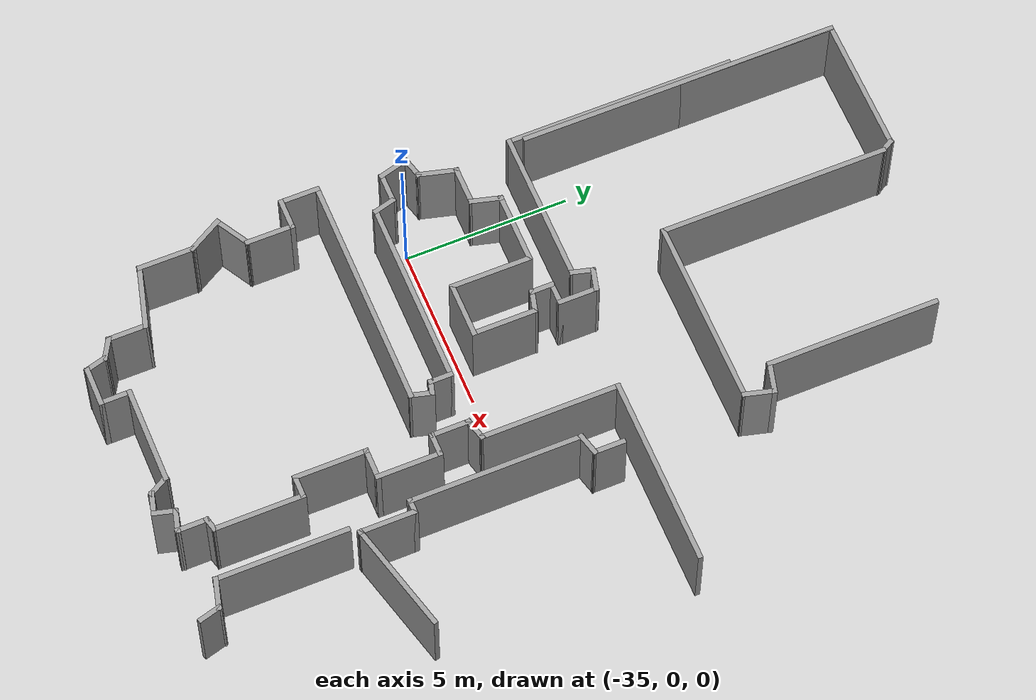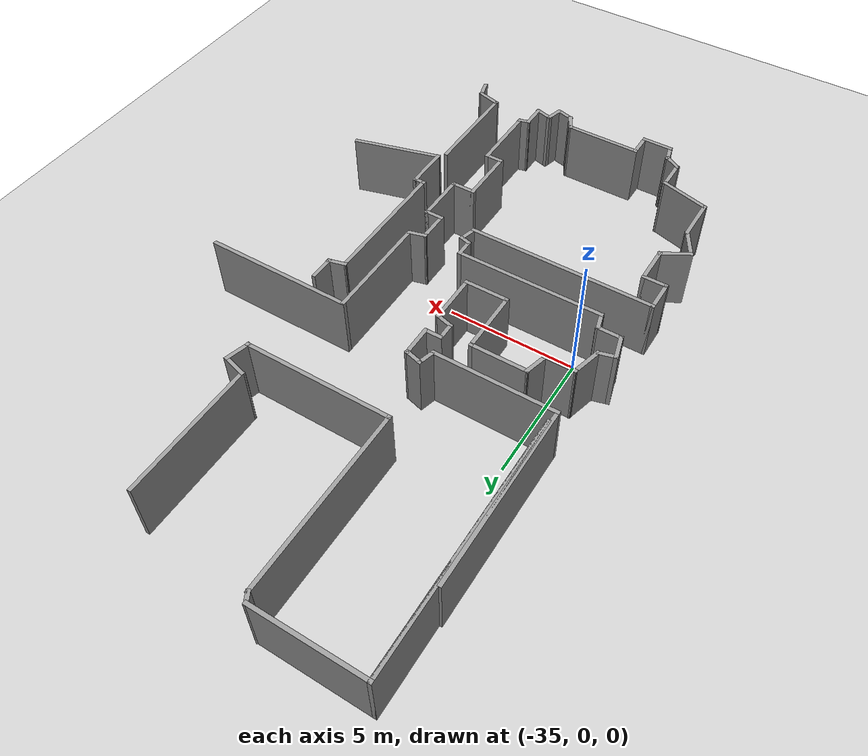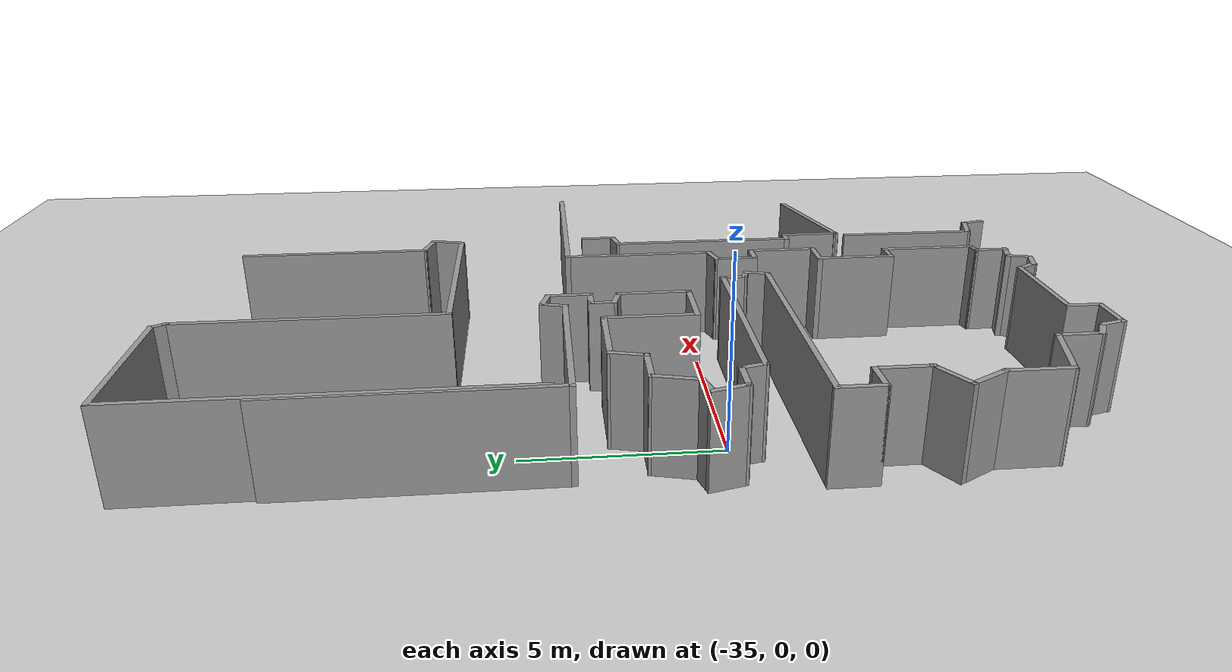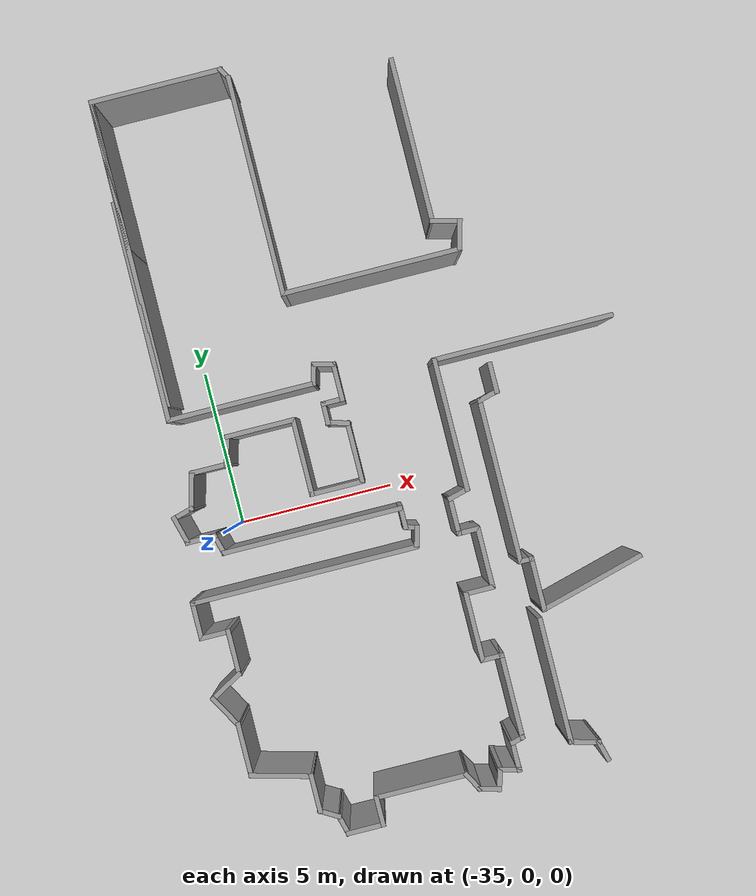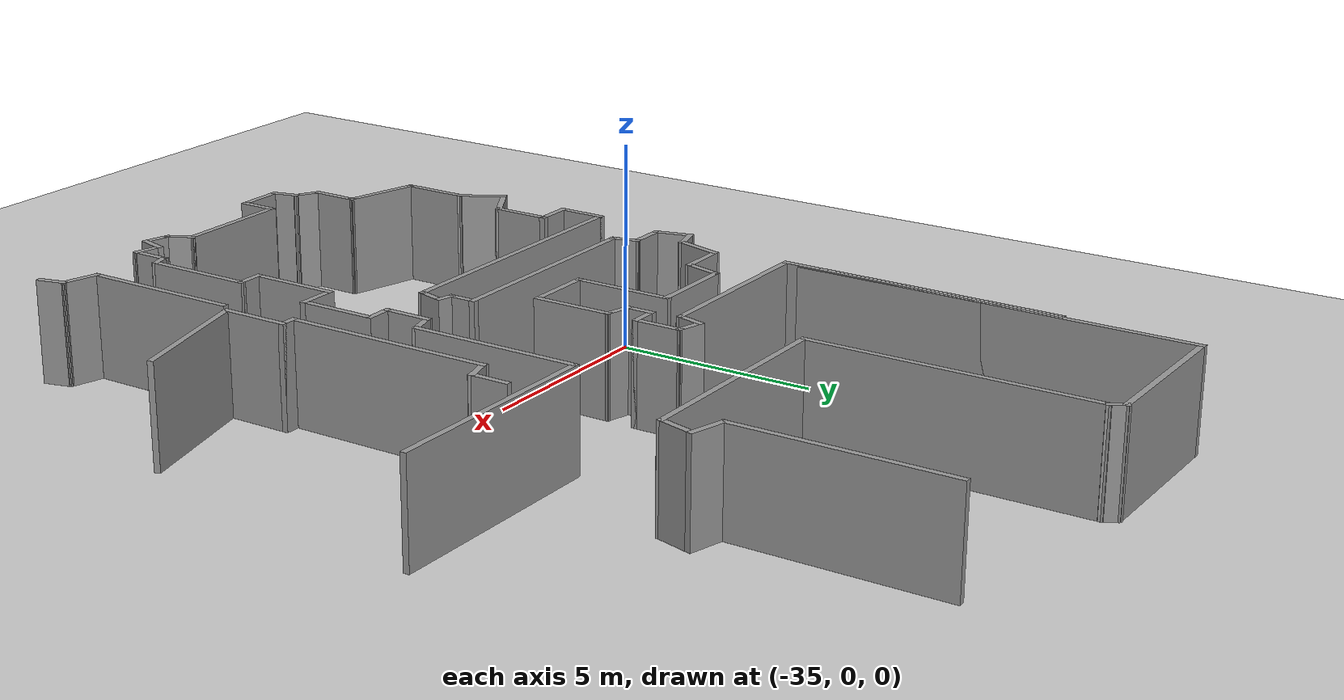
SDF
<sdf version="1.7">
 <world name="default">
  <model name="ground_plane">
   <static>1</static>
   <link name="link">
    <collision name="collision">
     <geometry><plane><normal>0 0 1</normal><size>100 100</size></plane></geometry>
     <surface>
      <contact><collide_bitmask>65535</collide_bitmask></contact>
      <friction><ode><mu>100</mu><mu2>50</mu2></ode></friction>
     </surface>
    </collision>
    <visual name="visual">
     <cast_shadows>0</cast_shadows>
     <geometry><plane><normal>0 0 1</normal><size>100 100</size></plane></geometry>
     <material>
      <script><uri>file://media/materials/scripts/gazebo.material</uri><name>Gazebo/Grey</name></script>
     </material>
    </visual>
   </link>
  </model>
  <model name="Hospital">
   <pose>0.328682 -0.388502 0 0 -0 0</pose>
   <link name="Wall_10">
    <collision name="Wall_10_Collision">
     <geometry><box><size>9.75 0.15 2.5</size></box></geometry>
     <pose>0 0 1.25 0 -0 0</pose>
    </collision>
    <visual name="Wall_10_Visual">
     <pose>0 0 1.25 0 -0 0</pose>
     <geometry><box><size>9.75 0.15 2.5</size></box></geometry>
     <material>
      <script><uri>file://media/materials/scripts/gazebo.material</uri><name>Gazebo/Grey</name></script>
      <ambient>1 1 1 1</ambient>
     </material>
     <meta><layer>0</layer></meta>
    </visual>
    <pose>-36.3837 9.34312 0 0 -0 1.5708</pose>
   </link>
   <link name="Wall_11">
    <collision name="Wall_11_Collision">
     <geometry><box><size>9.75 0.15 2.5</size></box></geometry>
     <pose>0 0 1.25 0 -0 0</pose>
    </collision>
    <visual name="Wall_11_Visual">
     <pose>0 0 1.25 0 -0 0</pose>
     <geometry><box><size>9.75 0.15 2.5</size></box></geometry>
     <material>
      <script><uri>file://media/materials/scripts/gazebo.material</uri><name>Gazebo/Grey</name></script>
      <ambient>1 1 1 1</ambient>
     </material>
     <meta><layer>0</layer></meta>
    </visual>
    <pose>-36.3837 9.34312 0 0 -0 -1.5708</pose>
   </link>
   <link name="Wall_13">
    <collision name="Wall_13_Collision">
     <geometry><box><size>4.25 0.15 2.5</size></box></geometry>
     <pose>0 0 1.25 0 -0 0</pose>
    </collision>
    <visual name="Wall_13_Visual">
     <pose>0 0 1.25 0 -0 0</pose>
     <geometry><box><size>4.25 0.15 2.5</size></box></geometry>
     <material>
      <script><uri>file://media/materials/scripts/gazebo.material</uri><name>Gazebo/Grey</name></script>
      <ambient>1 1 1 1</ambient>
     </material>
     <meta><layer>0</layer></meta>
    </visual>
    <pose>-34.3337 14.1431 0 0 -0 0</pose>
   </link>
   <link name="Wall_14">
    <collision name="Wall_14_Collision">
     <geometry><box><size>0.5 0.15 2.5</size></box></geometry>
     <pose>0 0 1.25 0 -0 0</pose>
    </collision>
    <visual name="Wall_14_Visual">
     <pose>0 0 1.25 0 -0 0</pose>
     <geometry><box><size>0.5 0.15 2.5</size></box></geometry>
     <material>
      <script><uri>file://media/materials/scripts/gazebo.material</uri><name>Gazebo/Grey</name></script>
      <ambient>1 1 1 1</ambient>
     </material>
     <meta><layer>0</layer></meta>
    </visual>
    <pose>-32.1962 13.9916 0 0 -0 -1.0472</pose>
   </link>
   <link name="Wall_15">
    <collision name="Wall_15_Collision">
     <geometry><box><size>7 0.15 2.5</size></box></geometry>
     <pose>0 0 1.25 0 -0 0</pose>
    </collision>
    <visual name="Wall_15_Visual">
     <pose>0 0 1.25 0 -0 0</pose>
     <geometry><box><size>7 0.15 2.5</size></box></geometry>
     <material>
      <script><uri>file://media/materials/scripts/gazebo.material</uri><name>Gazebo/Grey</name></script>
      <ambient>1 1 1 1</ambient>
     </material>
     <meta><layer>0</layer></meta>
    </visual>
    <pose>-32.1087 10.415 0 0 -0 -1.5708</pose>
   </link>
   <link name="Wall_16">
    <collision name="Wall_16_Collision">
     <geometry><box><size>5.75 0.15 2.5</size></box></geometry>
     <pose>0 0 1.25 0 -0 0</pose>
    </collision>
    <visual name="Wall_16_Visual">
     <pose>0 0 1.25 0 -0 0</pose>
     <geometry><box><size>5.75 0.15 2.5</size></box></geometry>
     <material>
      <script><uri>file://media/materials/scripts/gazebo.material</uri><name>Gazebo/Grey</name></script>
      <ambient>1 1 1 1</ambient>
     </material>
     <meta><layer>0</layer></meta>
    </visual>
    <pose>-29.3087 6.99001 0 0 -0 0</pose>
   </link>
   <link name="Wall_17">
    <collision name="Wall_17_Collision">
     <geometry><box><size>1 0.15 2.5</size></box></geometry>
     <pose>0 0 1.25 0 -0 0</pose>
    </collision>
    <visual name="Wall_17_Visual">
     <pose>0 0 1.25 0 -0 0</pose>
     <geometry><box><size>1 0.15 2.5</size></box></geometry>
     <material>
      <script><uri>file://media/materials/scripts/gazebo.material</uri><name>Gazebo/Grey</name></script>
      <ambient>1 1 1 1</ambient>
     </material>
     <meta><layer>0</layer></meta>
    </visual>
    <pose>-26.3987 7.40053 0 0 -0 1.309</pose>
   </link>
   <link name="Wall_18">
    <collision name="Wall_18_Collision">
     <geometry><box><size>1 0.15 2.5</size></box></geometry>
     <pose>0 0 1.25 0 -0 0</pose>
    </collision>
    <visual name="Wall_18_Visual">
     <pose>0 0 1.25 0 -0 0</pose>
     <geometry><box><size>1 0.15 2.5</size></box></geometry>
     <material>
      <script><uri>file://media/materials/scripts/gazebo.material</uri><name>Gazebo/Grey</name></script>
      <ambient>1 1 1 1</ambient>
     </material>
     <meta><layer>0</layer></meta>
    </visual>
    <pose>-26.6992 7.92105 0 0 -0 2.87979</pose>
   </link>
   <link name="Wall_19">
    <collision name="Wall_19_Collision">
     <geometry><box><size>5.25 0.15 2.5</size></box></geometry>
     <pose>0 0 1.25 0 -0 0</pose>
    </collision>
    <visual name="Wall_19_Visual">
     <pose>0 0 1.25 0 -0 0</pose>
     <geometry><box><size>5.25 0.15 2.5</size></box></geometry>
     <material>
      <script><uri>file://media/materials/scripts/gazebo.material</uri><name>Gazebo/Grey</name></script>
      <ambient>1 1 1 1</ambient>
     </material>
     <meta><layer>0</layer></meta>
    </visual>
    <pose>-27.1097 10.581 0 0 -0 1.5708</pose>
   </link>
   <link name="Wall_300">
    <collision name="Wall_300_Collision">
     <geometry><box><size>0.75 0.15 2.5</size></box></geometry>
     <pose>0 0 1.25 0 -0 0</pose>
    </collision>
    <visual name="Wall_300_Visual">
     <pose>0 0 1.25 0 -0 0</pose>
     <geometry><box><size>0.75 0.15 2.5</size></box></geometry>
     <material>
      <script><uri>file://media/materials/scripts/gazebo.material</uri><name>Gazebo/Grey</name></script>
      <ambient>1 1 1 1</ambient>
     </material>
     <meta><layer>0</layer></meta>
    </visual>
    <pose>-26.0116 -9.04058 0 0 -0 1.8326</pose>
   </link>
   <link name="Wall_301">
    <collision name="Wall_301_Collision">
     <geometry><box><size>1 0.15 2.5</size></box></geometry>
     <pose>0 0 1.25 0 -0 0</pose>
    </collision>
    <visual name="Wall_301_Visual">
     <pose>0 0 1.25 0 -0 0</pose>
     <geometry><box><size>1 0.15 2.5</size></box></geometry>
     <material>
      <script><uri>file://media/materials/scripts/gazebo.material</uri><name>Gazebo/Grey</name></script>
      <ambient>1 1 1 1</ambient>
     </material>
     <meta><layer>0</layer></meta>
    </visual>
    <pose>-26.4997 -8.6408 0 0 -0 2.87979</pose>
   </link>
   <link name="Wall_302">
    <collision name="Wall_302_Collision">
     <geometry><box><size>4 0.15 2.5</size></box></geometry>
     <pose>0 0 1.25 0 -0 0</pose>
    </collision>
    <visual name="Wall_302_Visual">
     <pose>0 0 1.25 0 -0 0</pose>
     <geometry><box><size>4 0.15 2.5</size></box></geometry>
     <material>
      <script><uri>file://media/materials/scripts/gazebo.material</uri><name>Gazebo/Grey</name></script>
      <ambient>1 1 1 1</ambient>
     </material>
     <meta><layer>0</layer></meta>
    </visual>
    <pose>-26.9103 -6.6058 0 0 -0 1.5708</pose>
   </link>
   <link name="Wall_309">
    <collision name="Wall_309_Collision">
     <geometry><box><size>3.5 0.15 2.5</size></box></geometry>
     <pose>0 0 1.25 0 -0 0</pose>
    </collision>
    <visual name="Wall_309_Visual">
     <pose>0 0 1.25 0 -0 0</pose>
     <geometry><box><size>3.5 0.15 2.5</size></box></geometry>
     <material>
      <script><uri>file://media/materials/scripts/gazebo.material</uri><name>Gazebo/Grey</name></script>
      <ambient>1 1 1 1</ambient>
     </material>
     <meta><layer>0</layer></meta>
    </visual>
    <pose>-25.0873 -3.95374 0 0 -0 -2.87979</pose>
   </link>
   <link name="Wall_310">
    <collision name="Wall_310_Collision">
     <geometry><box><size>1.75 0.15 2.5</size></box></geometry>
     <pose>0 0 1.25 0 -0 0</pose>
    </collision>
    <visual name="Wall_310_Visual">
     <pose>0 0 1.25 0 -0 0</pose>
     <geometry><box><size>1.75 0.15 2.5</size></box></geometry>
     <material>
      <script><uri>file://media/materials/scripts/gazebo.material</uri><name>Gazebo/Grey</name></script>
      <ambient>1 1 1 1</ambient>
     </material>
     <meta><layer>0</layer></meta>
    </visual>
    <pose>-26.7052 -3.58726 0 0 -0 1.5708</pose>
   </link>
   <link name="Wall_311">
    <collision name="Wall_311_Collision">
     <geometry><box><size>0.5 0.15 2.5</size></box></geometry>
     <pose>0 0 1.25 0 -0 0</pose>
    </collision>
    <visual name="Wall_311_Visual">
     <pose>0 0 1.25 0 -0 0</pose>
     <geometry><box><size>0.5 0.15 2.5</size></box></geometry>
     <material>
      <script><uri>file://media/materials/scripts/gazebo.material</uri><name>Gazebo/Grey</name></script>
      <ambient>1 1 1 1</ambient>
     </material>
     <meta><layer>0</layer></meta>
    </visual>
    <pose>-26.8802 -2.78726 0 0 -0 3.14159</pose>
   </link>
   <link name="Wall_312">
    <collision name="Wall_312_Collision">
     <geometry><box><size>5.25 0.15 2.5</size></box></geometry>
     <pose>0 0 1.25 0 -0 0</pose>
    </collision>
    <visual name="Wall_312_Visual">
     <pose>0 0 1.25 0 -0 0</pose>
     <geometry><box><size>5.25 0.15 2.5</size></box></geometry>
     <material>
      <script><uri>file://media/materials/scripts/gazebo.material</uri><name>Gazebo/Grey</name></script>
      <ambient>1 1 1 1</ambient>
     </material>
     <meta><layer>0</layer></meta>
    </visual>
    <pose>-27.0552 -0.237262 0 0 -0 1.5708</pose>
   </link>
   <link name="Wall_313">
    <collision name="Wall_313_Collision">
     <geometry><box><size>0.75 0.15 2.5</size></box></geometry>
     <pose>0 0 1.25 0 -0 0</pose>
    </collision>
    <visual name="Wall_313_Visual">
     <pose>0 0 1.25 0 -0 0</pose>
     <geometry><box><size>0.75 0.15 2.5</size></box></geometry>
     <material>
      <script><uri>file://media/materials/scripts/gazebo.material</uri><name>Gazebo/Grey</name></script>
      <ambient>1 1 1 1</ambient>
     </material>
     <meta><layer>0</layer></meta>
    </visual>
    <pose>-26.7654 2.39038 0 0 -0 0.261799</pose>
   </link>
   <link name="Wall_314">
    <collision name="Wall_314_Collision">
     <geometry><box><size>1 0.15 2.5</size></box></geometry>
     <pose>0 0 1.25 0 -0 0</pose>
    </collision>
    <visual name="Wall_314_Visual">
     <pose>0 0 1.25 0 -0 0</pose>
     <geometry><box><size>1 0.15 2.5</size></box></geometry>
     <material>
      <script><uri>file://media/materials/scripts/gazebo.material</uri><name>Gazebo/Grey</name></script>
      <ambient>1 1 1 1</ambient>
     </material>
     <meta><layer>0</layer></meta>
    </visual>
    <pose>-26.4757 2.89303 0 0 -0 1.5708</pose>
   </link>
   <link name="Wall_319">
    <collision name="Wall_319_Collision">
     <geometry><box><size>5.75 0.15 2.5</size></box></geometry>
     <pose>0 0 1.25 0 -0 0</pose>
    </collision>
    <visual name="Wall_319_Visual">
     <pose>0 0 1.25 0 -0 0</pose>
     <geometry><box><size>5.75 0.15 2.5</size></box></geometry>
     <material>
      <script><uri>file://media/materials/scripts/gazebo.material</uri><name>Gazebo/Grey</name></script>
      <ambient>1 1 1 1</ambient>
     </material>
     <meta><layer>0</layer></meta>
    </visual>
    <pose>-25.2961 3.87069 0 0 -0 3.14159</pose>
   </link>
   <link name="Wall_320">
    <collision name="Wall_320_Collision">
     <geometry><box><size>4.25 0.15 2.5</size></box></geometry>
     <pose>0 0 1.25 0 -0 0</pose>
    </collision>
    <visual name="Wall_320_Visual">
     <pose>0 0 1.25 0 -0 0</pose>
     <geometry><box><size>4.25 0.15 2.5</size></box></geometry>
     <material>
      <script><uri>file://media/materials/scripts/gazebo.material</uri><name>Gazebo/Grey</name></script>
      <ambient>1 1 1 1</ambient>
     </material>
     <meta><layer>0</layer></meta>
    </visual>
    <pose>-28.0961 1.82069 0 0 -0 -1.5708</pose>
   </link>
   <link name="Wall_321">
    <collision name="Wall_321_Collision">
     <geometry><box><size>0.75 0.15 2.5</size></box></geometry>
     <pose>0 0 1.25 0 -0 0</pose>
    </collision>
    <visual name="Wall_321_Visual">
     <pose>0 0 1.25 0 -0 0</pose>
     <geometry><box><size>0.75 0.15 2.5</size></box></geometry>
     <material>
      <script><uri>file://media/materials/scripts/gazebo.material</uri><name>Gazebo/Grey</name></script>
      <ambient>1 1 1 1</ambient>
     </material>
     <meta><layer>0</layer></meta>
    </visual>
    <pose>-28.3859 -0.306953 0 0 -0 -2.87979</pose>
   </link>
   <link name="Wall_322">
    <collision name="Wall_322_Collision">
     <geometry><box><size>1.25 0.15 2.5</size></box></geometry>
     <pose>0 0 1.25 0 -0 0</pose>
    </collision>
    <visual name="Wall_322_Visual">
     <pose>0 0 1.25 0 -0 0</pose>
     <geometry><box><size>1.25 0.15 2.5</size></box></geometry>
     <material>
      <script><uri>file://media/materials/scripts/gazebo.material</uri><name>Gazebo/Grey</name></script>
      <ambient>1 1 1 1</ambient>
     </material>
     <meta><layer>0</layer></meta>
    </visual>
    <pose>-28.6757 -0.934599 0 0 -0 -1.5708</pose>
   </link>
   <link name="Wall_323">
    <collision name="Wall_323_Collision">
     <geometry><box><size>0.75 0.15 2.5</size></box></geometry>
     <pose>0 0 1.25 0 -0 0</pose>
    </collision>
    <visual name="Wall_323_Visual">
     <pose>0 0 1.25 0 -0 0</pose>
     <geometry><box><size>0.75 0.15 2.5</size></box></geometry>
     <material>
      <script><uri>file://media/materials/scripts/gazebo.material</uri><name>Gazebo/Grey</name></script>
      <ambient>1 1 1 1</ambient>
     </material>
     <meta><layer>0</layer></meta>
    </visual>
    <pose>-28.3757 -1.4846 0 0 -0 0</pose>
   </link>
   <link name="Wall_325">
    <collision name="Wall_325_Collision">
     <geometry><box><size>2 0.15 2.5</size></box></geometry>
     <pose>0 0 1.25 0 -0 0</pose>
    </collision>
    <visual name="Wall_325_Visual">
     <pose>0 0 1.25 0 -0 0</pose>
     <geometry><box><size>2 0.15 2.5</size></box></geometry>
     <material>
      <script><uri>file://media/materials/scripts/gazebo.material</uri><name>Gazebo/Grey</name></script>
      <ambient>1 1 1 1</ambient>
     </material>
     <meta><layer>0</layer></meta>
    </visual>
    <pose>-28.0757 -2.4096 0 0 -0 -1.5708</pose>
   </link>
   <link name="Wall_326">
    <collision name="Wall_326_Collision">
     <geometry><box><size>1 0.15 2.5</size></box></geometry>
     <pose>0 0 1.25 0 -0 0</pose>
    </collision>
    <visual name="Wall_326_Visual">
     <pose>0 0 1.25 0 -0 0</pose>
     <geometry><box><size>1 0.15 2.5</size></box></geometry>
     <material>
      <script><uri>file://media/materials/scripts/gazebo.material</uri><name>Gazebo/Grey</name></script>
      <ambient>1 1 1 1</ambient>
     </material>
     <meta><layer>0</layer></meta>
    </visual>
    <pose>-28.5007 -3.3346 0 0 -0 3.14159</pose>
   </link>
   <link name="Wall_327">
    <collision name="Wall_327_Collision">
     <geometry><box><size>2.25 0.15 2.5</size></box></geometry>
     <pose>0 0 1.25 0 -0 0</pose>
    </collision>
    <visual name="Wall_327_Visual">
     <pose>0 0 1.25 0 -0 0</pose>
     <geometry><box><size>2.25 0.15 2.5</size></box></geometry>
     <material>
      <script><uri>file://media/materials/scripts/gazebo.material</uri><name>Gazebo/Grey</name></script>
      <ambient>1 1 1 1</ambient>
     </material>
     <meta><layer>0</layer></meta>
    </visual>
    <pose>-28.9257 -4.3846 0 0 -0 -1.5708</pose>
   </link>
   <link name="Wall_328">
    <collision name="Wall_328_Collision">
     <geometry><box><size>0.75 0.15 2.5</size></box></geometry>
     <pose>0 0 1.25 0 -0 0</pose>
    </collision>
    <visual name="Wall_328_Visual">
     <pose>0 0 1.25 0 -0 0</pose>
     <geometry><box><size>0.75 0.15 2.5</size></box></geometry>
     <material>
      <script><uri>file://media/materials/scripts/gazebo.material</uri><name>Gazebo/Grey</name></script>
      <ambient>1 1 1 1</ambient>
     </material>
     <meta><layer>0</layer></meta>
    </visual>
    <pose>-28.6257 -5.4346 0 0 -0 0</pose>
   </link>
   <link name="Wall_329">
    <collision name="Wall_329_Collision">
     <geometry><box><size>2.75 0.15 2.5</size></box></geometry>
     <pose>0 0 1.25 0 -0 0</pose>
    </collision>
    <visual name="Wall_329_Visual">
     <pose>0 0 1.25 0 -0 0</pose>
     <geometry><box><size>2.75 0.15 2.5</size></box></geometry>
     <material>
      <script><uri>file://media/materials/scripts/gazebo.material</uri><name>Gazebo/Grey</name></script>
      <ambient>1 1 1 1</ambient>
     </material>
     <meta><layer>0</layer></meta>
    </visual>
    <pose>-28.3257 -6.7346 0 0 -0 -1.5708</pose>
   </link>
   <link name="Wall_330">
    <collision name="Wall_330_Collision">
     <geometry><box><size>0.5 0.15 2.5</size></box></geometry>
     <pose>0 0 1.25 0 -0 0</pose>
    </collision>
    <visual name="Wall_330_Visual">
     <pose>0 0 1.25 0 -0 0</pose>
     <geometry><box><size>0.5 0.15 2.5</size></box></geometry>
     <material>
      <script><uri>file://media/materials/scripts/gazebo.material</uri><name>Gazebo/Grey</name></script>
      <ambient>1 1 1 1</ambient>
     </material>
     <meta><layer>0</layer></meta>
    </visual>
    <pose>-28.4947 -8.07989 0 0 -0 -2.87979</pose>
   </link>
   <link name="Wall_331">
    <collision name="Wall_331_Collision">
     <geometry><box><size>1 0.15 2.5</size></box></geometry>
     <pose>0 0 1.25 0 -0 0</pose>
    </collision>
    <visual name="Wall_331_Visual">
     <pose>0 0 1.25 0 -0 0</pose>
     <geometry><box><size>1 0.15 2.5</size></box></geometry>
     <material>
      <script><uri>file://media/materials/scripts/gazebo.material</uri><name>Gazebo/Grey</name></script>
      <ambient>1 1 1 1</ambient>
     </material>
     <meta><layer>0</layer></meta>
    </visual>
    <pose>-28.6637 -8.55019 0 0 -0 -1.5708</pose>
   </link>
   <link name="Wall_332">
    <collision name="Wall_332_Collision">
     <geometry><box><size>0.75 0.15 2.5</size></box></geometry>
     <pose>0 0 1.25 0 -0 0</pose>
    </collision>
    <visual name="Wall_332_Visual">
     <pose>0 0 1.25 0 -0 0</pose>
     <geometry><box><size>0.75 0.15 2.5</size></box></geometry>
     <material>
      <script><uri>file://media/materials/scripts/gazebo.material</uri><name>Gazebo/Grey</name></script>
      <ambient>1 1 1 1</ambient>
     </material>
     <meta><layer>0</layer></meta>
    </visual>
    <pose>-28.9535 -8.89754 0 0 -0 2.87979</pose>
   </link>
   <link name="Wall_333">
    <collision name="Wall_333_Collision">
     <geometry><box><size>0.75 0.15 2.5</size></box></geometry>
     <pose>0 0 1.25 0 -0 0</pose>
    </collision>
    <visual name="Wall_333_Visual">
     <pose>0 0 1.25 0 -0 0</pose>
     <geometry><box><size>0.75 0.15 2.5</size></box></geometry>
     <material>
      <script><uri>file://media/materials/scripts/gazebo.material</uri><name>Gazebo/Grey</name></script>
      <ambient>1 1 1 1</ambient>
     </material>
     <meta><layer>0</layer></meta>
    </visual>
    <pose>-29.3209 -9.10967 0 0 -0 -1.8326</pose>
   </link>
   <link name="Wall_334">
    <collision name="Wall_334_Collision">
     <geometry><box><size>0.75 0.15 2.5</size></box></geometry>
     <pose>0 0 1.25 0 -0 0</pose>
    </collision>
    <visual name="Wall_334_Visual">
     <pose>0 0 1.25 0 -0 0</pose>
     <geometry><box><size>0.75 0.15 2.5</size></box></geometry>
     <material>
      <script><uri>file://media/materials/scripts/gazebo.material</uri><name>Gazebo/Grey</name></script>
      <ambient>1 1 1 1</ambient>
     </material>
     <meta><layer>0</layer></meta>
    </visual>
    <pose>-29.6884 -9.3218 0 0 -0 2.87979</pose>
   </link>
   <link name="Wall_335">
    <collision name="Wall_335_Collision">
     <geometry><box><size>0.75 0.15 2.5</size></box></geometry>
     <pose>0 0 1.25 0 -0 0</pose>
    </collision>
    <visual name="Wall_335_Visual">
     <pose>0 0 1.25 0 -0 0</pose>
     <geometry><box><size>0.75 0.15 2.5</size></box></geometry>
     <material>
      <script><uri>file://media/materials/scripts/gazebo.material</uri><name>Gazebo/Grey</name></script>
      <ambient>1 1 1 1</ambient>
     </material>
     <meta><layer>0</layer></meta>
    </visual>
    <pose>-30.1281 -8.98435 0 0 -0 2.0944</pose>
   </link>
   <link name="Wall_336">
    <collision name="Wall_336_Collision">
     <geometry><box><size>3 0.15 2.5</size></box></geometry>
     <pose>0 0 1.25 0 -0 0</pose>
    </collision>
    <visual name="Wall_336_Visual">
     <pose>0 0 1.25 0 -0 0</pose>
     <geometry><box><size>3 0.15 2.5</size></box></geometry>
     <material>
      <script><uri>file://media/materials/scripts/gazebo.material</uri><name>Gazebo/Grey</name></script>
      <ambient>1 1 1 1</ambient>
     </material>
     <meta><layer>0</layer></meta>
    </visual>
    <pose>-31.7031 -8.72454 0 0 -0 3.14159</pose>
   </link>
   <link name="Wall_337">
    <collision name="Wall_337_Collision">
     <geometry><box><size>1 0.15 2.5</size></box></geometry>
     <pose>0 0 1.25 0 -0 0</pose>
    </collision>
    <visual name="Wall_337_Visual">
     <pose>0 0 1.25 0 -0 0</pose>
     <geometry><box><size>1 0.15 2.5</size></box></geometry>
     <material>
      <script><uri>file://media/materials/scripts/gazebo.material</uri><name>Gazebo/Grey</name></script>
      <ambient>1 1 1 1</ambient>
     </material>
     <meta><layer>0</layer></meta>
    </visual>
    <pose>-33.1281 -9.14954 0 0 -0 -1.5708</pose>
   </link>
   <link name="Wall_338">
    <collision name="Wall_338_Collision">
     <geometry><box><size>1.25 0.15 2.5</size></box></geometry>
     <pose>0 0 1.25 0 -0 0</pose>
    </collision>
    <visual name="Wall_338_Visual">
     <pose>0 0 1.25 0 -0 0</pose>
     <geometry><box><size>1.25 0.15 2.5</size></box></geometry>
     <material>
      <script><uri>file://media/materials/scripts/gazebo.material</uri><name>Gazebo/Grey</name></script>
      <ambient>1 1 1 1</ambient>
     </material>
     <meta><layer>0</layer></meta>
    </visual>
    <pose>-33.6781 -9.57454 0 0 -0 3.14159</pose>
   </link>
   <link name="Wall_339">
    <collision name="Wall_339_Collision">
     <geometry><box><size>0.75 0.15 2.5</size></box></geometry>
     <pose>0 0 1.25 0 -0 0</pose>
    </collision>
    <visual name="Wall_339_Visual">
     <pose>0 0 1.25 0 -0 0</pose>
     <geometry><box><size>0.75 0.15 2.5</size></box></geometry>
     <material>
      <script><uri>file://media/materials/scripts/gazebo.material</uri><name>Gazebo/Grey</name></script>
      <ambient>1 1 1 1</ambient>
     </material>
     <meta><layer>0</layer></meta>
    </visual>
    <pose>-34.3058 -9.28477 0 0 -0 1.8326</pose>
   </link>
   <link name="Wall_340">
    <collision name="Wall_340_Collision">
     <geometry><box><size>0.75 0.15 2.5</size></box></geometry>
     <pose>0 0 1.25 0 -0 0</pose>
    </collision>
    <visual name="Wall_340_Visual">
     <pose>0 0 1.25 0 -0 0</pose>
     <geometry><box><size>0.75 0.15 2.5</size></box></geometry>
     <material>
      <script><uri>file://media/materials/scripts/gazebo.material</uri><name>Gazebo/Grey</name></script>
      <ambient>1 1 1 1</ambient>
     </material>
     <meta><layer>0</layer></meta>
    </visual>
    <pose>-34.6432 -8.84499 0 0 -0 2.61799</pose>
   </link>
   <link name="Wall_341">
    <collision name="Wall_341_Collision">
     <geometry><box><size>1.25 0.15 2.5</size></box></geometry>
     <pose>0 0 1.25 0 -0 0</pose>
    </collision>
    <visual name="Wall_341_Visual">
     <pose>0 0 1.25 0 -0 0</pose>
     <geometry><box><size>1.25 0.15 2.5</size></box></geometry>
     <material>
      <script><uri>file://media/materials/scripts/gazebo.material</uri><name>Gazebo/Grey</name></script>
      <ambient>1 1 1 1</ambient>
     </material>
     <meta><layer>0</layer></meta>
    </visual>
    <pose>-34.9031 -8.14499 0 0 -0 1.5708</pose>
   </link>
   <link name="Wall_342">
    <collision name="Wall_342_Collision">
     <geometry><box><size>2 0.15 2.5</size></box></geometry>
     <pose>0 0 1.25 0 -0 0</pose>
    </collision>
    <visual name="Wall_342_Visual">
     <pose>0 0 1.25 0 -0 0</pose>
     <geometry><box><size>2 0.15 2.5</size></box></geometry>
     <material>
      <script><uri>file://media/materials/scripts/gazebo.material</uri><name>Gazebo/Grey</name></script>
      <ambient>1 1 1 1</ambient>
     </material>
     <meta><layer>0</layer></meta>
    </visual>
    <pose>-35.7965 -7.35558 0 0 -0 2.87979</pose>
   </link>
   <link name="Wall_343">
    <collision name="Wall_343_Collision">
     <geometry><box><size>1.75 0.15 2.5</size></box></geometry>
     <pose>0 0 1.25 0 -0 0</pose>
    </collision>
    <visual name="Wall_343_Visual">
     <pose>0 0 1.25 0 -0 0</pose>
     <geometry><box><size>1.75 0.15 2.5</size></box></geometry>
     <material>
      <script><uri>file://media/materials/scripts/gazebo.material</uri><name>Gazebo/Grey</name></script>
      <ambient>1 1 1 1</ambient>
     </material>
     <meta><layer>0</layer></meta>
    </visual>
    <pose>-36.69 -6.31617 0 0 -0 1.5708</pose>
   </link>
   <link name="Wall_344">
    <collision name="Wall_344_Collision">
     <geometry><box><size>1.25 0.15 2.5</size></box></geometry>
     <pose>0 0 1.25 0 -0 0</pose>
    </collision>
    <visual name="Wall_344_Visual">
     <pose>0 0 1.25 0 -0 0</pose>
     <geometry><box><size>1.25 0.15 2.5</size></box></geometry>
     <material>
      <script><uri>file://media/materials/scripts/gazebo.material</uri><name>Gazebo/Grey</name></script>
      <ambient>1 1 1 1</ambient>
     </material>
     <meta><layer>0</layer></meta>
    </visual>
    <pose>-36.965 -5.03986 0 0 -0 2.0944</pose>
   </link>
   <link name="Wall_345">
    <collision name="Wall_345_Collision">
     <geometry><box><size>1.25 0.15 2.5</size></box></geometry>
     <pose>0 0 1.25 0 -0 0</pose>
    </collision>
    <visual name="Wall_345_Visual">
     <pose>0 0 1.25 0 -0 0</pose>
     <geometry><box><size>1.25 0.15 2.5</size></box></geometry>
     <material>
      <script><uri>file://media/materials/scripts/gazebo.material</uri><name>Gazebo/Grey</name></script>
      <ambient>1 1 1 1</ambient>
     </material>
     <meta><layer>0</layer></meta>
    </visual>
    <pose>-36.7637 -4.28854 0 0 -0 0.523599</pose>
   </link>
   <link name="Wall_346">
    <collision name="Wall_346_Collision">
     <geometry><box><size>1.5 0.15 2.5</size></box></geometry>
     <pose>0 0 1.25 0 -0 0</pose>
    </collision>
    <visual name="Wall_346_Visual">
     <pose>0 0 1.25 0 -0 0</pose>
     <geometry><box><size>1.5 0.15 2.5</size></box></geometry>
     <material>
      <script><uri>file://media/materials/scripts/gazebo.material</uri><name>Gazebo/Grey</name></script>
      <ambient>1 1 1 1</ambient>
     </material>
     <meta><layer>0</layer></meta>
    </visual>
    <pose>-36.2874 -3.33854 0 0 -0 1.5708</pose>
   </link>
   <link name="Wall_347">
    <collision name="Wall_347_Collision">
     <geometry><box><size>1 0.15 2.5</size></box></geometry>
     <pose>0 0 1.25 0 -0 0</pose>
    </collision>
    <visual name="Wall_347_Visual">
     <pose>0 0 1.25 0 -0 0</pose>
     <geometry><box><size>1 0.15 2.5</size></box></geometry>
     <material>
      <script><uri>file://media/materials/scripts/gazebo.material</uri><name>Gazebo/Grey</name></script>
      <ambient>1 1 1 1</ambient>
     </material>
     <meta><layer>0</layer></meta>
    </visual>
    <pose>-36.7124 -2.66354 0 0 -0 3.14159</pose>
   </link>
   <link name="Wall_348">
    <collision name="Wall_348_Collision">
     <geometry><box><size>1.25 0.15 2.5</size></box></geometry>
     <pose>0 0 1.25 0 -0 0</pose>
    </collision>
    <visual name="Wall_348_Visual">
     <pose>0 0 1.25 0 -0 0</pose>
     <geometry><box><size>1.25 0.15 2.5</size></box></geometry>
     <material>
      <script><uri>file://media/materials/scripts/gazebo.material</uri><name>Gazebo/Grey</name></script>
      <ambient>1 1 1 1</ambient>
     </material>
     <meta><layer>0</layer></meta>
    </visual>
    <pose>-37.1374 -2.11354 0 0 -0 1.5708</pose>
   </link>
   <link name="Wall_349">
    <collision name="Wall_349_Collision">
     <geometry><box><size>7.25 0.15 2.5</size></box></geometry>
     <pose>0 0 1.25 0 -0 0</pose>
    </collision>
    <visual name="Wall_349_Visual">
     <pose>0 0 1.25 0 -0 0</pose>
     <geometry><box><size>7.25 0.15 2.5</size></box></geometry>
     <material>
      <script><uri>file://media/materials/scripts/gazebo.material</uri><name>Gazebo/Grey</name></script>
      <ambient>1 1 1 1</ambient>
     </material>
     <meta><layer>0</layer></meta>
    </visual>
    <pose>-33.5874 -1.56354 0 0 -0 0</pose>
   </link>
   <link name="Wall_350">
    <collision name="Wall_350_Collision">
     <geometry><box><size>0.75 0.15 2.5</size></box></geometry>
     <pose>0 0 1.25 0 -0 0</pose>
    </collision>
    <visual name="Wall_350_Visual">
     <pose>0 0 1.25 0 -0 0</pose>
     <geometry><box><size>0.75 0.15 2.5</size></box></geometry>
     <material>
      <script><uri>file://media/materials/scripts/gazebo.material</uri><name>Gazebo/Grey</name></script>
      <ambient>1 1 1 1</ambient>
     </material>
     <meta><layer>0</layer></meta>
    </visual>
    <pose>-29.9597 -1.27377 0 0 -0 1.309</pose>
   </link>
   <link name="Wall_351">
    <collision name="Wall_351_Collision">
     <geometry><box><size>0.5 0.15 2.5</size></box></geometry>
     <pose>0 0 1.25 0 -0 0</pose>
    </collision>
    <visual name="Wall_351_Visual">
     <pose>0 0 1.25 0 -0 0</pose>
     <geometry><box><size>0.5 0.15 2.5</size></box></geometry>
     <material>
      <script><uri>file://media/materials/scripts/gazebo.material</uri><name>Gazebo/Grey</name></script>
      <ambient>1 1 1 1</ambient>
     </material>
     <meta><layer>0</layer></meta>
    </visual>
    <pose>-30.0511 -0.938695 0 0 -0 2.87979</pose>
   </link>
   <link name="Wall_352">
    <collision name="Wall_352_Collision">
     <geometry><box><size>0.75 0.15 2.5</size></box></geometry>
     <pose>0 0 1.25 0 -0 0</pose>
    </collision>
    <visual name="Wall_352_Visual">
     <pose>0 0 1.25 0 -0 0</pose>
     <geometry><box><size>0.75 0.15 2.5</size></box></geometry>
     <material>
      <script><uri>file://media/materials/scripts/gazebo.material</uri><name>Gazebo/Grey</name></script>
      <ambient>1 1 1 1</ambient>
     </material>
     <meta><layer>0</layer></meta>
    </visual>
    <pose>-30.2202 -0.593402 0 0 -0 1.5708</pose>
   </link>
   <link name="Wall_353">
    <collision name="Wall_353_Collision">
     <geometry><box><size>5.75 0.15 2.5</size></box></geometry>
     <pose>0 0 1.25 0 -0 0</pose>
    </collision>
    <visual name="Wall_353_Visual">
     <pose>0 0 1.25 0 -0 0</pose>
     <geometry><box><size>5.75 0.15 2.5</size></box></geometry>
     <material>
      <script><uri>file://media/materials/scripts/gazebo.material</uri><name>Gazebo/Grey</name></script>
      <ambient>1 1 1 1</ambient>
     </material>
     <meta><layer>0</layer></meta>
    </visual>
    <pose>-33.0202 -0.293402 0 0 -0 3.14159</pose>
   </link>
   <link name="Wall_354">
    <collision name="Wall_354_Collision">
     <geometry><box><size>0.75 0.15 2.5</size></box></geometry>
     <pose>0 0 1.25 0 -0 0</pose>
    </collision>
    <visual name="Wall_354_Visual">
     <pose>0 0 1.25 0 -0 0</pose>
     <geometry><box><size>0.75 0.15 2.5</size></box></geometry>
     <material>
      <script><uri>file://media/materials/scripts/gazebo.material</uri><name>Gazebo/Grey</name></script>
      <ambient>1 1 1 1</ambient>
     </material>
     <meta><layer>0</layer></meta>
    </visual>
    <pose>-35.8978 -0.003624 0 0 -0 1.8326</pose>
   </link>
   <link name="Wall_355">
    <collision name="Wall_355_Collision">
     <geometry><box><size>1 0.15 2.5</size></box></geometry>
     <pose>0 0 1.25 0 -0 0</pose>
    </collision>
    <visual name="Wall_355_Visual">
     <pose>0 0 1.25 0 -0 0</pose>
     <geometry><box><size>1 0.15 2.5</size></box></geometry>
     <material>
      <script><uri>file://media/materials/scripts/gazebo.material</uri><name>Gazebo/Grey</name></script>
      <ambient>1 1 1 1</ambient>
     </material>
     <meta><layer>0</layer></meta>
    </visual>
    <pose>-36.4005 0.286154 0 0 -0 3.14159</pose>
   </link>
   <link name="Wall_356">
    <collision name="Wall_356_Collision">
     <geometry><box><size>1 0.15 2.5</size></box></geometry>
     <pose>0 0 1.25 0 -0 0</pose>
    </collision>
    <visual name="Wall_356_Visual">
     <pose>0 0 1.25 0 -0 0</pose>
     <geometry><box><size>1 0.15 2.5</size></box></geometry>
     <material>
      <script><uri>file://media/materials/scripts/gazebo.material</uri><name>Gazebo/Grey</name></script>
      <ambient>1 1 1 1</ambient>
     </material>
     <meta><layer>0</layer></meta>
    </visual>
    <pose>-36.9355 0.696672 0 0 -0 1.8326</pose>
   </link>
   <link name="Wall_357">
    <collision name="Wall_357_Collision">
     <geometry><box><size>0.75 0.15 2.5</size></box></geometry>
     <pose>0 0 1.25 0 -0 0</pose>
    </collision>
    <visual name="Wall_357_Visual">
     <pose>0 0 1.25 0 -0 0</pose>
     <geometry><box><size>0.75 0.15 2.5</size></box></geometry>
     <material>
      <script><uri>file://media/materials/scripts/gazebo.material</uri><name>Gazebo/Grey</name></script>
      <ambient>1 1 1 1</ambient>
     </material>
     <meta><layer>0</layer></meta>
    </visual>
    <pose>-36.7557 1.18484 0 0 -0 0.261799</pose>
   </link>
   <link name="Wall_358">
    <collision name="Wall_358_Collision">
     <geometry><box><size>1.25 0.15 2.5</size></box></geometry>
     <pose>0 0 1.25 0 -0 0</pose>
    </collision>
    <visual name="Wall_358_Visual">
     <pose>0 0 1.25 0 -0 0</pose>
     <geometry><box><size>1.25 0.15 2.5</size></box></geometry>
     <material>
      <script><uri>file://media/materials/scripts/gazebo.material</uri><name>Gazebo/Grey</name></script>
      <ambient>1 1 1 1</ambient>
     </material>
     <meta><layer>0</layer></meta>
    </visual>
    <pose>-36.3236 1.79374 0 0 -0 1.309</pose>
   </link>
   <link name="Wall_359">
    <collision name="Wall_359_Collision">
     <geometry><box><size>1.25 0.15 2.5</size></box></geometry>
     <pose>0 0 1.25 0 -0 0</pose>
    </collision>
    <visual name="Wall_359_Visual">
     <pose>0 0 1.25 0 -0 0</pose>
     <geometry><box><size>1.25 0.15 2.5</size></box></geometry>
     <material>
      <script><uri>file://media/materials/scripts/gazebo.material</uri><name>Gazebo/Grey</name></script>
      <ambient>1 1 1 1</ambient>
     </material>
     <meta><layer>0</layer></meta>
    </visual>
    <pose>-35.6312 2.325 0 0 -0 0</pose>
   </link>
   <link name="Wall_360">
    <collision name="Wall_360_Collision">
     <geometry><box><size>1 0.15 2.5</size></box></geometry>
     <pose>0 0 1.25 0 -0 0</pose>
    </collision>
    <visual name="Wall_360_Visual">
     <pose>0 0 1.25 0 -0 0</pose>
     <geometry><box><size>1 0.15 2.5</size></box></geometry>
     <material>
      <script><uri>file://media/materials/scripts/gazebo.material</uri><name>Gazebo/Grey</name></script>
      <ambient>1 1 1 1</ambient>
     </material>
     <meta><layer>0</layer></meta>
    </visual>
    <pose>-34.9712 2.73552 0 0 -0 1.309</pose>
   </link>
   <link name="Wall_361">
    <collision name="Wall_361_Collision">
     <geometry><box><size>2.25 0.15 2.5</size></box></geometry>
     <pose>0 0 1.25 0 -0 0</pose>
    </collision>
    <visual name="Wall_361_Visual">
     <pose>0 0 1.25 0 -0 0</pose>
     <geometry><box><size>2.25 0.15 2.5</size></box></geometry>
     <material>
      <script><uri>file://media/materials/scripts/gazebo.material</uri><name>Gazebo/Grey</name></script>
      <ambient>1 1 1 1</ambient>
     </material>
     <meta><layer>0</layer></meta>
    </visual>
    <pose>-33.8112 3.14604 0 0 -0 0</pose>
   </link>
   <link name="Wall_362">
    <collision name="Wall_362_Collision">
     <geometry><box><size>2.5 0.15 2.5</size></box></geometry>
     <pose>0 0 1.25 0 -0 0</pose>
    </collision>
    <visual name="Wall_362_Visual">
     <pose>0 0 1.25 0 -0 0</pose>
     <geometry><box><size>2.5 0.15 2.5</size></box></geometry>
     <material>
      <script><uri>file://media/materials/scripts/gazebo.material</uri><name>Gazebo/Grey</name></script>
      <ambient>1 1 1 1</ambient>
     </material>
     <meta><layer>0</layer></meta>
    </visual>
    <pose>-32.7612 1.97104 0 0 -0 -1.5708</pose>
   </link>
   <link name="Wall_363">
    <collision name="Wall_363_Collision">
     <geometry><box><size>1.75 0.15 2.5</size></box></geometry>
     <pose>0 0 1.25 0 -0 0</pose>
    </collision>
    <visual name="Wall_363_Visual">
     <pose>0 0 1.25 0 -0 0</pose>
     <geometry><box><size>1.75 0.15 2.5</size></box></geometry>
     <material>
      <script><uri>file://media/materials/scripts/gazebo.material</uri><name>Gazebo/Grey</name></script>
      <ambient>1 1 1 1</ambient>
     </material>
     <meta><layer>0</layer></meta>
    </visual>
    <pose>-31.9612 0.796037 0 0 -0 0</pose>
   </link>
   <link name="Wall_364">
    <collision name="Wall_364_Collision">
     <geometry><box><size>2 0.15 2.5</size></box></geometry>
     <pose>0 0 1.25 0 -0 0</pose>
    </collision>
    <visual name="Wall_364_Visual">
     <pose>0 0 1.25 0 -0 0</pose>
     <geometry><box><size>2 0.15 2.5</size></box></geometry>
     <material>
      <script><uri>file://media/materials/scripts/gazebo.material</uri><name>Gazebo/Grey</name></script>
      <ambient>1 1 1 1</ambient>
     </material>
     <meta><layer>0</layer></meta>
    </visual>
    <pose>-31.1612 1.72104 0 0 -0 1.5708</pose>
   </link>
   <link name="Wall_365">
    <collision name="Wall_365_Collision">
     <geometry><box><size>0.75 0.15 2.5</size></box></geometry>
     <pose>0 0 1.25 0 -0 0</pose>
    </collision>
    <visual name="Wall_365_Visual">
     <pose>0 0 1.25 0 -0 0</pose>
     <geometry><box><size>0.75 0.15 2.5</size></box></geometry>
     <material>
      <script><uri>file://media/materials/scripts/gazebo.material</uri><name>Gazebo/Grey</name></script>
      <ambient>1 1 1 1</ambient>
     </material>
     <meta><layer>0</layer></meta>
    </visual>
    <pose>-31.451 2.72368 0 0 -0 2.87979</pose>
   </link>
   <link name="Wall_366">
    <collision name="Wall_366_Collision">
     <geometry><box><size>0.75 0.15 2.5</size></box></geometry>
     <pose>0 0 1.25 0 -0 0</pose>
    </collision>
    <visual name="Wall_366_Visual">
     <pose>0 0 1.25 0 -0 0</pose>
     <geometry><box><size>0.75 0.15 2.5</size></box></geometry>
     <material>
      <script><uri>file://media/materials/scripts/gazebo.material</uri><name>Gazebo/Grey</name></script>
      <ambient>1 1 1 1</ambient>
     </material>
     <meta><layer>0</layer></meta>
    </visual>
    <pose>-31.7408 3.10133 0 0 -0 1.5708</pose>
   </link>
   <link name="Wall_367">
    <collision name="Wall_367_Collision">
     <geometry><box><size>0.75 0.15 2.5</size></box></geometry>
     <pose>0 0 1.25 0 -0 0</pose>
    </collision>
    <visual name="Wall_367_Visual">
     <pose>0 0 1.25 0 -0 0</pose>
     <geometry><box><size>0.75 0.15 2.5</size></box></geometry>
     <material>
      <script><uri>file://media/materials/scripts/gazebo.material</uri><name>Gazebo/Grey</name></script>
      <ambient>1 1 1 1</ambient>
     </material>
     <meta><layer>0</layer></meta>
    </visual>
    <pose>-31.4408 3.40133 0 0 -0 0</pose>
   </link>
   <link name="Wall_368">
    <collision name="Wall_368_Collision">
     <geometry><box><size>1.25 0.15 2.5</size></box></geometry>
     <pose>0 0 1.25 0 -0 0</pose>
    </collision>
    <visual name="Wall_368_Visual">
     <pose>0 0 1.25 0 -0 0</pose>
     <geometry><box><size>1.25 0.15 2.5</size></box></geometry>
     <material>
      <script><uri>file://media/materials/scripts/gazebo.material</uri><name>Gazebo/Grey</name></script>
      <ambient>1 1 1 1</ambient>
     </material>
     <meta><layer>0</layer></meta>
    </visual>
    <pose>-31.1408 3.95133 0 0 -0 1.5708</pose>
   </link>
   <link name="Wall_369">
    <collision name="Wall_369_Collision">
     <geometry><box><size>0.75 0.15 2.5</size></box></geometry>
     <pose>0 0 1.25 0 -0 0</pose>
    </collision>
    <visual name="Wall_369_Visual">
     <pose>0 0 1.25 0 -0 0</pose>
     <geometry><box><size>0.75 0.15 2.5</size></box></geometry>
     <material>
      <script><uri>file://media/materials/scripts/gazebo.material</uri><name>Gazebo/Grey</name></script>
      <ambient>1 1 1 1</ambient>
     </material>
     <meta><layer>0</layer></meta>
    </visual>
    <pose>-31.4305 4.57897 0 0 -0 2.87979</pose>
   </link>
   <link name="Wall_370">
    <collision name="Wall_370_Collision">
     <geometry><box><size>0.75 0.15 2.5</size></box></geometry>
     <pose>0 0 1.25 0 -0 0</pose>
    </collision>
    <visual name="Wall_370_Visual">
     <pose>0 0 1.25 0 -0 0</pose>
     <geometry><box><size>0.75 0.15 2.5</size></box></geometry>
     <material>
      <script><uri>file://media/materials/scripts/gazebo.material</uri><name>Gazebo/Grey</name></script>
      <ambient>1 1 1 1</ambient>
     </material>
     <meta><layer>0</layer></meta>
    </visual>
    <pose>-31.798 4.36684 0 0 -0 -1.8326</pose>
   </link>
   <link name="Wall_371">
    <collision name="Wall_371_Collision">
     <geometry><box><size>4.75 0.15 2.5</size></box></geometry>
     <pose>0 0 1.25 0 -0 0</pose>
    </collision>
    <visual name="Wall_371_Visual">
     <pose>0 0 1.25 0 -0 0</pose>
     <geometry><box><size>4.75 0.15 2.5</size></box></geometry>
     <material>
      <script><uri>file://media/materials/scripts/gazebo.material</uri><name>Gazebo/Grey</name></script>
      <ambient>1 1 1 1</ambient>
     </material>
     <meta><layer>0</layer></meta>
    </visual>
    <pose>-34.1756 4.07707 0 0 -0 3.14159</pose>
   </link>
   <link name="Wall_372">
    <collision name="Wall_372_Collision">
     <geometry><box><size>7 0.15 2.5</size></box></geometry>
     <pose>0 0 1.25 0 -0 0</pose>
    </collision>
    <visual name="Wall_372_Visual">
     <pose>0 0 1.25 0 -0 0</pose>
     <geometry><box><size>7 0.15 2.5</size></box></geometry>
     <material>
      <script><uri>file://media/materials/scripts/gazebo.material</uri><name>Gazebo/Grey</name></script>
      <ambient>1 1 1 1</ambient>
     </material>
     <meta><layer>0</layer></meta>
    </visual>
    <pose>-36.4756 7.50206 0 0 -0 1.5708</pose>
   </link>
   <link name="Wall_9">
    <collision name="Wall_9_Collision">
     <geometry><box><size>9.75 0.15 2.5</size></box></geometry>
     <pose>0 0 1.25 0 -0 0</pose>
    </collision>
    <visual name="Wall_9_Visual">
     <pose>0 0 1.25 0 -0 0</pose>
     <geometry><box><size>9.75 0.15 2.5</size></box></geometry>
     <material>
      <script><uri>file://media/materials/scripts/gazebo.material</uri><name>Gazebo/Grey</name></script>
      <ambient>1 1 1 1</ambient>
     </material>
     <meta><layer>0</layer></meta>
    </visual>
    <pose>-36.3837 9.34312 0 0 -0 -1.5708</pose>
   </link>
   <static>1</static>
  </model>
 </world>
</sdf>
